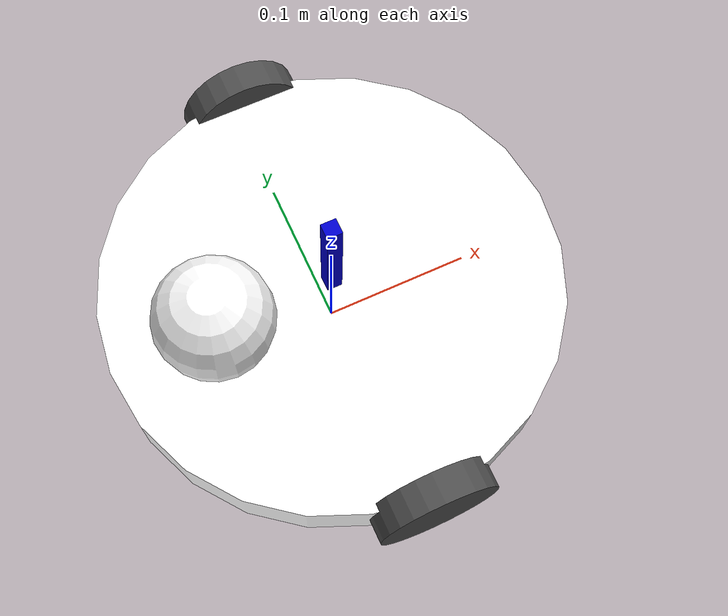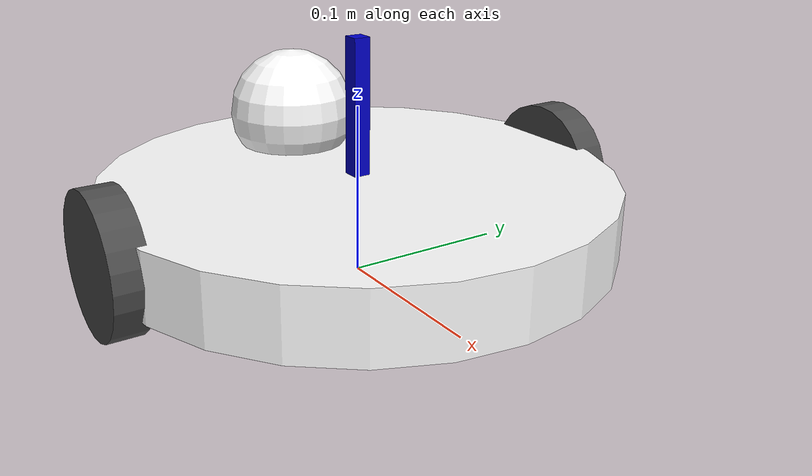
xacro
<?xml version="1.0"?>
<robot name="differential_wheeled_robot" xmlns:xacro="http://ros.org/wiki/xacro">

<xacro:include filename="$(find my_robot)/urdf/wheel.urdf.xacro" />

<!-- Defining the colors used in this robot -->
<material name="Black">
  <color rgba="0.0 0.0 0.0 1.0"/>
</material>

<material name="Red">
  <color rgba="0.8 0.0 0.0 1.0"/>
</material>

<material name="White">
  <color rgba="1.0 1.0 1.0 1.0"/>
</material>

<material name="Blue">
  <color rgba="0.0 0.0 0.8 1.0"/>
</material>

<!-- PROPERTY LIST -->
<!--All units in m-kg-s-radians unit system -->
<xacro:property name="M_PI" value="3.1415926535897931" />
<xacro:property name="M_PI_2" value="1.570796327" />
<xacro:property name="DEG_TO_RAD" value="0.017453293" />
<xacro:property name="deg_to_rad" value="0.017453293" />
<!-- Main body radius and height -->
<!-- Main Body Cylinder base   -->
<xacro:property name="base_height" value="0.04" />
<xacro:property name="base_radius" value="0.15" />
<xacro:property name="base_mass" value="5" /> <!-- in kg-->

<!-- caster wheel radius and height -->
<!-- caster wheel mass -->
<xacro:property name="caster_f_radius" value="0.029" />
<xacro:property name="caster_f_mass" value="0.5" /> <!-- in kg-->

<xacro:property name="caster_b_radius" value="0.029" />
<xacro:property name="caster_b_mass" value="0.5" /> <!-- in kg-->

<!-- Wheels -->
<xacro:property name="wheel_mass" value="2.5" /> --> <!-- in kg-->

<xacro:property name="base_x_origin_to_wheel_origin" value="0.25" />
<xacro:property name="base_y_origin_to_wheel_origin" value="0.3" />
<xacro:property name="base_z_origin_to_wheel_origin" value="0" />

<!-- Hokuyo Laser scanner -->
<xacro:property name="hokuyo_size" value="0.01" />
<xacro:property name="camera_base_lenth" value="0.25" />

<xacro:macro name="sphere_inertia" params="m r">
  <inertia  ixx="${2*m*r*r/5}" ixy = "0" ixz = "0"
            iyy="${2*m*r*r/5}" iyz = "0"
            izz="${2*m*r*r/5}"/>
</xacro:macro>

<!-- BASE-FOOTPRINT -->
<!-- base_footprint is a fictitious link(frame) that is on the ground right below base_link origin -->
<link name="base_footprint">
  <inertial>
    <mass value="0.0001" />
    <origin xyz="0 0 0" />
    <inertia ixx="0.0001" ixy="0.0" ixz="0.0"
             iyy="0.0001" iyz="0.0"
             izz="0.0001" />
  </inertial>
  <visual>
    <origin xyz="0 0 0" rpy="0 0 0" />
    <geometry>
      <box size="0.001 0.001 0.001" />
    </geometry>
  </visual>
</link>

<gazebo reference="base_footprint">
  <turnGravityOff>false</turnGravityOff>
</gazebo>

<joint name="base_footprint_joint" type="fixed">
  <origin xyz="0 0 ${wheel_radius - base_z_origin_to_wheel_origin}" rpy="0 0 0" />
  <parent link="base_footprint"/>
  <child link="base_link" />
</joint>

<!-- BASE-LINK -->
<!--Actual body/chassis of the robot-->
<link name="base_link">
  <inertial>
    <mass value="${base_mass}" />
    <origin xyz="0 0 0" />
    <!--The 3x3 rotational inertia matrix. -->
    <cylinder_inertia  m="${base_mass}" r="${base_radius}" h="${base_height}" />
  </inertial>

  <visual>
    <origin xyz="0 0 0" rpy="0 0 0" />
    <geometry>
        <cylinder length="${base_height}" radius="${base_radius}" />
    </geometry>
    <material name="White" />
  </visual>

  <collision>
    <origin xyz="0 0 0" rpy="0 0 0 " />
    <geometry>
      <cylinder length="${base_height}" radius="${base_radius}" />
    </geometry>
  </collision>
</link>

<gazebo reference="base_link">
  <material>Gazebo/Black</material>
  <turnGravityOff>false</turnGravityOff>
</gazebo>

<!--Caster front  -->
<link name="caster_front_link">
  <visual>
    <origin xyz="0 0 0" rpy="0 0 0" />
    <geometry>
      <sphere radius="${caster_f_radius}" />
    </geometry>
    <material name="White" />
  </visual>

  <collision>
    <origin xyz="0 0 0" rpy="0 0 0" />
    <geometry>
      <sphere radius="${caster_f_radius}" />
    </geometry>
  </collision>

  <inertial>
    <mass value="${caster_f_mass}" />
    <origin xyz="0 0 0" />
    <sphere_inertia  m="${caster_f_mass}" r="${caster_f_radius}"/>
  </inertial>
</link>

<joint name="caster_front_joint" type="fixed">
  <parent link="base_link"/>
  <child link="caster_front_link"/>
  <origin xyz="0.1 0 -0.01" rpy="0 0 0"/>
</joint>

<gazebo reference="caster_front_link">
  <turnGravityOff>false</turnGravityOff>
</gazebo>

<!--Caster back  -->
<link name="caster_back_link">
  <visual>
    <origin xyz="0 0 0" rpy="0 0 0" />
    <geometry>
      <sphere radius="${caster_b_radius}" />
    </geometry>
    <material name="White"/>
  </visual>

  <collision>
    <origin xyz="0 0 0" rpy="0 0 0" />
    <geometry>
      <sphere radius="${caster_b_radius}" />
    </geometry>
  </collision>

  <inertial>
    <mass value="${caster_b_mass}" />
    <origin xyz="0 0 0" />
    <sphere_inertia  m="${caster_b_mass}" r="${caster_b_radius}"/>
  </inertial>
</link>

<joint name="caster_back_joint" type="fixed">
  <parent link="base_link"/>
  <child link="caster_back_link"/>
  <origin xyz="-0.1 0 -0.01" rpy="0 0 0"/>
</joint>

<gazebo reference="caster_back_link">
  <turnGravityOff>false</turnGravityOff>
</gazebo>

<!--Caster front back -->
<link name="caster_back_up_link">
  <visual>
    <origin xyz="0 0 0" rpy="0 0 0" />
    <geometry>
      <sphere radius="${caster_f_radius + 0.01}" />
    </geometry>
    <material name="White" />
  </visual>

  <collision>
    <origin xyz="0 0 0" rpy="0 0 0" />
    <geometry>
      <sphere radius="${caster_f_radius + 0.01}" />
    </geometry>
  </collision>

  <inertial>
    <mass value="${caster_f_mass}" />
    <origin xyz="0 0 0" />
    <sphere_inertia  m="${caster_f_mass}" r="${caster_f_radius}"/>
  </inertial>
</link>

<joint name="caster_back_up_joint" type="fixed">
  <parent link="base_link"/>
  <child link="caster_back_up_link"/>
  <origin xyz="${-0.05 - caster_f_radius} 0 0.04" rpy="0 0 0"/>
</joint>

<gazebo reference="caster_back_up_link">
  <turnGravityOff>false</turnGravityOff>
</gazebo>

<!-- Wheel Definitions -->
<wheel fb="front" lr="right" parent="base_link" translateX="0" translateY="0.5" flipY="1"/>
<wheel fb="front" lr="left" parent="base_link" translateX="0" translateY="-0.5" flipY="1"/>

<!-- hokuyo -->
<link name="hokuyo_link">
  <visual>
    <origin xyz="0 0 0" rpy="0 0 0" />
    <geometry>
      <box size="${hokuyo_size} ${hokuyo_size} 0.1"/>
    </geometry>
    <material name="Blue" />
  </visual>
</link>
<joint name="hokuyo_joint" type="fixed">
  <origin xyz="0 0 0.05" rpy="0 0 0" />
  <parent link="base_link"/>
  <child link="hokuyo_link" />
</joint>
<gazebo reference="hokuyo_link">
  <material>Gazebo/Blue</material>
  <turnGravityOff>false</turnGravityOff>
  <sensor type="ray" name="head_hokuyo_sensor">
    <pose>0 0 0 0 0 0</pose>
    <visualize>true</visualize>
    <update_rate>200</update_rate>
    <ray>
      <scan>
        <horizontal>
          <samples>5</samples> <!-- Number of sensors-->
          <resolution>1</resolution>
          <min_angle>-1.57</min_angle> <!-- Viewing angle-->
          <max_angle>1.57</max_angle> <!-- Viewing angle-->
        </horizontal>
      </scan>
      <range>
        <min>0</min>
        <max>0.6</max>
        <resolution>0.01</resolution>
      </range>
    </ray>
    <plugin name="gazebo_ros_head_hokuyo_controller" filename="libgazebo_ros_laser.so">
      <topicName>/scan</topicName>
      <frameName>hokuyo_link</frameName>
    </plugin>
  </sensor>
</gazebo>

<!-- Differential drive controller  -->
<gazebo>
  <plugin name="differential_drive_controller" filename="libgazebo_ros_diff_drive.so">
    <legacyMode>true</legacyMode>
    <rosDebugLevel>0</rosDebugLevel>
    <publishWheelTF>false</publishWheelTF>
    <robotNamespace>/</robotNamespace>
    <publishTf>1</publishTf>
    <publishWheelJointState>false</publishWheelJointState>
    <alwaysOn>true</alwaysOn>
    <updateRate>100.0</updateRate>
    <leftJoint>front_left_wheel_joint</leftJoint>
    <rightJoint>front_right_wheel_joint</rightJoint>
    <wheelSeparation>${2*base_radius}</wheelSeparation>
    <wheelDiameter>${2*wheel_radius}</wheelDiameter>
    <broadcastTF>1</broadcastTF>
    <wheelTorque>30</wheelTorque>
    <wheelAcceleration>1.8</wheelAcceleration>
    <commandTopic>cmd_vel</commandTopic>
    <odometryFrame>odom</odometryFrame>
    <odometryTopic>odom</odometryTopic>
    <robotBaseFrame>base_footprint</robotBaseFrame>
  </plugin>
</gazebo>
<gazebo>
  <plugin name="imu_plugin" filename="libgazebo_ros_imu.so">
    <alwaysOn>true</alwaysOn>
    <bodyName>base_link</bodyName>
    <topicName>imu</topicName>
    <serviceName>imu_service</serviceName>
    <gaussianNoise>0.0</gaussianNoise>
    <rpyOffsets>0 0 0</rpyOffsets>
    <accelDrift>0.5 0.5 0.5</accelDrift>
    <accelGaussianNoise>0.35 0.35 0.3</accelGaussianNoise>
    <rateDrift>0.0 0.0 0.0</rateDrift>
    <rateGaussianNoise>0.00 0.00 0.00</rateGaussianNoise>
    <headingDrift>0.0</headingDrift>
    <headingGaussianNoise>0.00</headingGaussianNoise>
    <updateRate>00</updateRate>
  </plugin>
</gazebo>
</robot>

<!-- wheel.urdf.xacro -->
<robot name="wheel" xmlns:xacro="http://www.ros.org/wiki/xacro">

<!-- Wheels -->
<xacro:property name="wheel_radius" value="0.04" />
<xacro:property name="wheel_height" value="0.02" />
<xacro:property name="wheel_mass" value="2.5" /> <!-- in kg-->

<xacro:property name="base_x_origin_to_wheel_origin" value="0.25" />
<xacro:property name="base_y_origin_to_wheel_origin" value="0.3" />
<xacro:property name="base_z_origin_to_wheel_origin" value="0.0" />

<xacro:macro name="cylinder_inertia" params="m r h">
  <inertia  ixx="${m*(3*r*r+h*h)/12}" ixy = "0" ixz = "0"
            iyy="${m*(3*r*r+h*h)/12}" iyz = "0"
            izz="${m*r*r/2}" />
</xacro:macro>

<xacro:macro name="wheel" params="fb lr parent translateX translateY flipY"> <!--fb : front, back ; lr: left, right -->
  <link name="${fb}_${lr}_wheel">
    <visual>
      <origin xyz="0 0 0" rpy="${flipY*M_PI/2} 0 0 "/>
      <geometry>
        <cylinder length="${wheel_height}" radius="${wheel_radius}"/>
      </geometry>
      <material name="DarkGray"/>
    </visual>
    <collision>
      <origin xyz="0 0 0" rpy="${flipY*M_PI/2} 0 0 " />
      <geometry>
        <cylinder length="${wheel_height}" radius="${wheel_radius}"/>
      </geometry>
    </collision>
    <inertial>
      <mass value="${wheel_mass}" />
      <origin xyz="0 0 0" />
      <cylinder_inertia  m="${wheel_mass}" r="${wheel_radius}" h="${wheel_height}"/>
    </inertial>
  </link>

  <gazebo reference="${fb}_${lr}_wheel">
    <mu1 value="1.0"/>
    <mu2 value="1.0"/>
    <kp  value="10000000.0" />
    <kd  value="1.0" />
    <fdir1 value="1 0 0"/>
    <material>Gazebo/Grey</material>
    <turnGravityOff>false</turnGravityOff>
  </gazebo>

  <joint name="${fb}_${lr}_wheel_joint" type="continuous">
    <parent link="${parent}"/>
    <child link="${fb}_${lr}_wheel"/>
    <origin xyz="${translateX * base_x_origin_to_wheel_origin} ${translateY * base_y_origin_to_wheel_origin} ${base_z_origin_to_wheel_origin}" rpy="0 0 0" />
    <axis xyz="0 1 0" rpy="0 0 0" />
    <limit effort="100" velocity="100"/>
    <joint_properties damping="0.0" friction="0.0"/>
  </joint>

  <!-- Transmission is important to link the joints and the controller -->
  <transmission name="${fb}_${lr}_wheel_joint_trans">
    <type>transmission_interface/SimpleTransmission</type>
    <joint name="${fb}_${lr}_wheel_joint" />
    <actuator name="${fb}_${lr}_wheel_joint_motor">
      <hardwareInterface>EffortJointInterface</hardwareInterface>
      <mechanicalReduction>1</mechanicalReduction>
    </actuator>
  </transmission>
</xacro:macro>
</robot>
